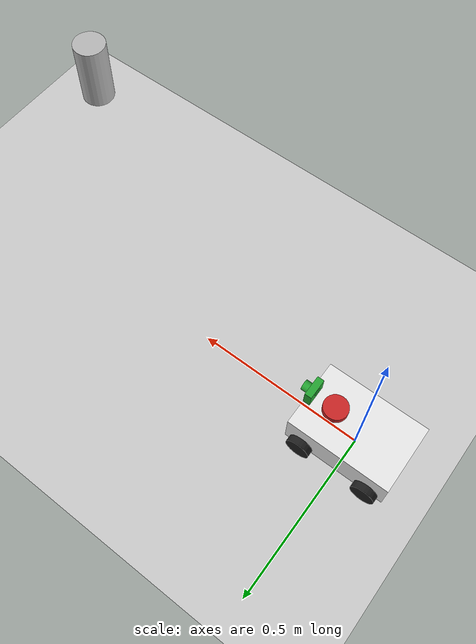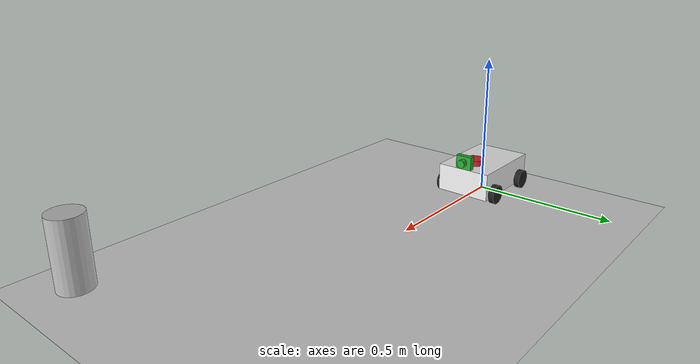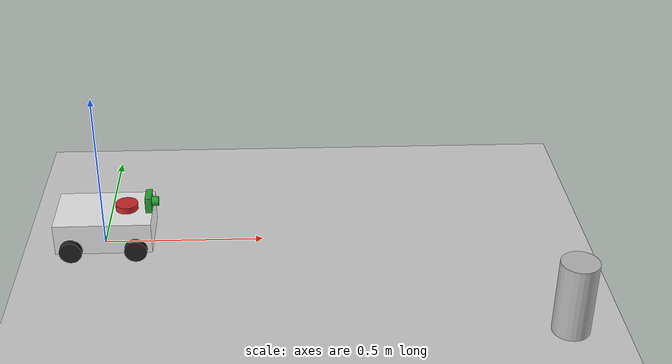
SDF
<sdf version="1.7">
 <world name="default">
  <light name="sun" type="directional">
   <pose>0 0 10 0 -0 0</pose>
   <diffuse>0.8 0.8 0.8 1</diffuse>
   <specular>0.2 0.2 0.2 1</specular>
   <attenuation>
    <range>1000</range>
    <constant>0.9</constant>
    <linear>0.01</linear>
    <quadratic>0.001</quadratic>
   </attenuation>
   <direction>-0.5 0.1 -0.9</direction>
   <spot><inner_angle>0</inner_angle><outer_angle>0</outer_angle><falloff>0</falloff></spot>
  </light>
  <model name="ground_plane">
   <static>1</static>
   <link name="link">
    <collision name="collision">
     <geometry><plane><normal>0 0 1</normal><size>100 100</size></plane></geometry>
     <surface>
      <contact><collide_bitmask>65535</collide_bitmask></contact>
      <friction><ode><mu>100</mu><mu2>50</mu2></ode></friction>
     </surface>
    </collision>
    <visual name="visual">
     <cast_shadows>0</cast_shadows>
     <geometry><plane><normal>0 0 1</normal><size>100 100</size></plane></geometry>
     <material>
      <script><uri>file://media/materials/scripts/gazebo.material</uri><name>Gazebo/Grey</name></script>
     </material>
    </visual>
   </link>
  </model>
  <gravity>0 0 -9.8</gravity>
  <magnetic_field>6e-06 2.3e-05 -4.2e-05</magnetic_field>
  <atmosphere type="adiabatic"/>
  <physics type="ode">
   <max_step_size>0.001</max_step_size>
   <real_time_factor>1</real_time_factor>
   <real_time_update_rate>1000</real_time_update_rate>
  </physics>
  <scene><ambient>0.4 0.4 0.4 1</ambient><background>0.7 0.7 0.7 1</background><shadows>1</shadows></scene>
  <audio><device>default</device></audio>
  <spherical_coordinates>
   <surface_model>EARTH_WGS84</surface_model>
   <latitude_deg>0</latitude_deg>
   <longitude_deg>0</longitude_deg>
   <elevation>0</elevation>
   <heading_deg>0</heading_deg>
  </spherical_coordinates>
  <model name="my_bot">
   <link name="base_link">
    <inertial>
     <pose>-0.005652 0 0.084565 0 -0 0</pose>
     <mass>2.3</mass>
     <inertia>
      <ixx>0.0212836</ixx>
      <ixy>0</ixy>
      <ixz>-0.00111435</ixz>
      <iyy>0.00844409</iyy>
      <iyz>1.0842e-19</iyz>
      <izz>0.0166425</izz>
     </inertia>
    </inertial>
    <collision name="base_link_fixed_joint_lump__chassis_collision">
     <pose>0 0 0.085 0 -0 0</pose>
     <geometry><box><size>0.3 0.2 0.1</size></box></geometry>
    </collision>
    <collision name="base_link_fixed_joint_lump__laser_frame_collision_1">
     <pose>0.07 0 0.145 0 -0 0</pose>
     <geometry><cylinder><length>0.02</length><radius>0.035</radius></cylinder></geometry>
    </collision>
    <collision name="base_link_fixed_joint_lump__left_back_wheel_collision_2">
     <pose>-0.1 0.11 0.05 -1.5708 0 0</pose>
     <geometry><cylinder><length>0.02</length><radius>0.035</radius></cylinder></geometry>
     <surface><friction><ode><mu>0.0001</mu><mu2>0.0001</mu2></ode></friction></surface>
    </collision>
    <collision name="base_link_fixed_joint_lump__right_back_wheel_collision_3">
     <pose>-0.1 -0.11 0.05 -1.5708 0 0</pose>
     <geometry><cylinder><length>0.02</length><radius>0.035</radius></cylinder></geometry>
     <surface><friction><ode><mu>0.0001</mu><mu2>0.0001</mu2></ode></friction></surface>
    </collision>
    <visual name="base_link_fixed_joint_lump__chassis_visual">
     <pose>0 0 0.085 0 -0 0</pose>
     <geometry><box><size>0.3 0.2 0.1</size></box></geometry>
     <material>
      <script><name>Gazebo/White</name><uri>file://media/materials/scripts/gazebo.material</uri></script>
     </material>
    </visual>
    <visual name="base_link_fixed_joint_lump__camera_visual_1">
     <pose>0.14 0 0.16 0 -0 0</pose>
     <geometry><box><size>0.02 0.06 0.05</size></box></geometry>
     <material>
      <script><name>Gazebo/Green</name><uri>file://media/materials/scripts/gazebo.material</uri></script>
     </material>
    </visual>
    <visual name="base_link_fixed_joint_lump__camera_visual_2">
     <pose>0.15 0 0.16 3.14159 -1.57079 3.14159</pose>
     <geometry><cylinder><length>0.04</length><radius>0.015</radius></cylinder></geometry>
     <material>
      <script><name>Gazebo/Green</name><uri>file://media/materials/scripts/gazebo.material</uri></script>
     </material>
    </visual>
    <visual name="base_link_fixed_joint_lump__laser_frame_visual_3">
     <pose>0.07 0 0.145 0 -0 0</pose>
     <geometry><cylinder><length>0.02</length><radius>0.035</radius></cylinder></geometry>
     <material>
      <script><name>Gazebo/Red</name><uri>file://media/materials/scripts/gazebo.material</uri></script>
     </material>
    </visual>
    <visual name="base_link_fixed_joint_lump__left_back_wheel_visual_4">
     <pose>-0.1 0.11 0.05 -1.5708 0 0</pose>
     <geometry><cylinder><length>0.02</length><radius>0.035</radius></cylinder></geometry>
     <material>
      <script><name>Gazebo/Black</name><uri>file://media/materials/scripts/gazebo.material</uri></script>
     </material>
    </visual>
    <visual name="base_link_fixed_joint_lump__right_back_wheel_visual_5">
     <pose>-0.1 -0.11 0.05 -1.5708 0 0</pose>
     <geometry><cylinder><length>0.02</length><radius>0.035</radius></cylinder></geometry>
     <material>
      <script><name>Gazebo/Black</name><uri>file://media/materials/scripts/gazebo.material</uri></script>
     </material>
    </visual>
    <sensor name="camera" type="camera">
     <visualize>1</visualize>
     <update_rate>10</update_rate>
     <camera>
      <horizontal_fov>1.089</horizontal_fov>
      <image><format>R8G8B8</format><width>640</width><height>480</height></image>
      <clip><near>0.05</near><far>8</far></clip>
     </camera>
     <plugin name="camera_controller" filename="libgazebo_ros_camera.so">
      <frame_name>camera_optical</frame_name>
     </plugin>
     <pose>0.14 0 0.16 0 -0 0</pose>
    </sensor>
    <sensor name="laser" type="ray">
     <visualize>1</visualize>
     <update_rate>10</update_rate>
     <ray>
      <scan>
       <horizontal>
        <samples>360</samples>
        <min_angle>-3.14</min_angle>
        <max_angle>3.14</max_angle>
        <resolution>1</resolution>
       </horizontal>
       <vertical><samples>1</samples><min_angle>0</min_angle><max_angle>0</max_angle></vertical>
      </scan>
      <range><min>0.3</min><max>12</max></range>
     </ray>
     <plugin name="laser_controller" filename="libgazebo_ros_ray_sensor.so">
      <ros><argument>~/out:=scan</argument></ros>
      <output_type>sensor_msgs/LaserScan</output_type>
      <frame_name>laser_frame</frame_name>
     </plugin>
     <pose>0.07 0 0.145 0 -0 0</pose>
    </sensor>
   </link>
   <joint name="left_front_wheel_joint" type="revolute">
    <pose relative_to="base_link">0.1 0.11 0.05 -1.5708 0 0</pose>
    <parent>base_link</parent>
    <child>left_front_wheel</child>
    <axis>
     <xyz>0 0 1</xyz>
     <limit><lower>-1e+16</lower><upper>1e+16</upper></limit>
     <dynamics><spring_reference>0</spring_reference><spring_stiffness>0</spring_stiffness></dynamics>
    </axis>
   </joint>
   <link name="left_front_wheel">
    <pose relative_to="left_front_wheel_joint">0 0 0 0 -0 0</pose>
    <inertial>
     <mass>0.1</mass>
     <inertia><ixx>0.000253</ixx><ixy>0</ixy><ixz>0</ixz><iyy>0.000253</iyy><iyz>0</iyz><izz>0.0005</izz></inertia>
    </inertial>
    <collision name="left_front_wheel_collision">
     <geometry><cylinder><length>0.02</length><radius>0.035</radius></cylinder></geometry>
    </collision>
    <visual name="left_front_wheel_visual">
     <geometry><cylinder><length>0.02</length><radius>0.035</radius></cylinder></geometry>
     <material>
      <script><name>Gazebo/Black</name><uri>file://media/materials/scripts/gazebo.material</uri></script>
     </material>
    </visual>
   </link>
   <joint name="right_front_wheel_joint" type="revolute">
    <pose relative_to="base_link">0.1 -0.11 0.05 -1.5708 0 0</pose>
    <parent>base_link</parent>
    <child>right_front_wheel</child>
    <axis>
     <xyz>0 0 1</xyz>
     <limit><lower>-1e+16</lower><upper>1e+16</upper></limit>
     <dynamics><spring_reference>0</spring_reference><spring_stiffness>0</spring_stiffness></dynamics>
    </axis>
   </joint>
   <link name="right_front_wheel">
    <pose relative_to="right_front_wheel_joint">0 0 0 0 -0 0</pose>
    <inertial>
     <mass>0.1</mass>
     <inertia><ixx>0.000253</ixx><ixy>0</ixy><ixz>0</ixz><iyy>0.000253</iyy><iyz>0</iyz><izz>0.0005</izz></inertia>
    </inertial>
    <collision name="right_front_wheel_collision">
     <geometry><cylinder><length>0.02</length><radius>0.035</radius></cylinder></geometry>
    </collision>
    <visual name="right_front_wheel_visual">
     <geometry><cylinder><length>0.02</length><radius>0.035</radius></cylinder></geometry>
     <material>
      <script><name>Gazebo/Black</name><uri>file://media/materials/scripts/gazebo.material</uri></script>
     </material>
    </visual>
   </link>
   <static>0</static>
   <plugin name="gazebo_ros2_control" filename="libgazebo_ros2_control.so">
    <parameters>/home/tand/second_ros2_ws/install/bearing_formation_control/share/bearing_formation_control/config/ros2_controller.yaml</parameters>
   </plugin>
   <pose>0.007433 0.003733 -0.015007 -0 -7.4e-05 0.006154</pose>
  </model>
  <model name="beer">
   <link name="link">
    <pose>0 0 0.115 0 -0 0</pose>
    <inertial>
     <mass>0.39</mass>
     <inertia><ixx>0.00058</ixx><ixy>0</ixy><ixz>0</ixz><iyy>0.00058</iyy><iyz>0</iyz><izz>0.00019</izz></inertia>
    </inertial>
    <collision name="collision">
     <geometry><cylinder><radius>0.055</radius><length>0.23</length></cylinder></geometry>
    </collision>
    <visual name="visual">
     <geometry><cylinder><radius>0.055</radius><length>0.23</length></cylinder></geometry>
     <material>
      <script>
       <uri>model://beer/materials/scripts</uri>
       <uri>model://beer/materials/textures</uri>
       <name>Beer/Diffuse</name>
      </script>
     </material>
    </visual>
   </link>
   <pose>1.37182 -0.503197 -7e-06 -1e-06 -0 -4e-06</pose>
  </model>
 </world>
</sdf>
